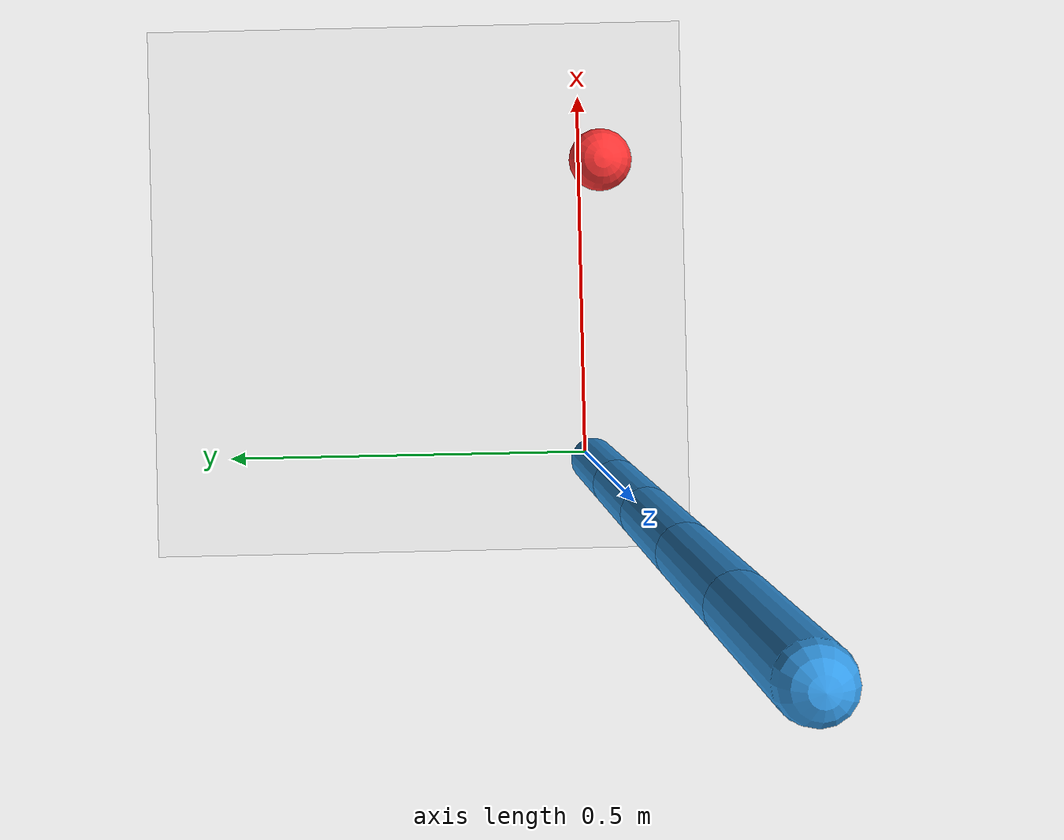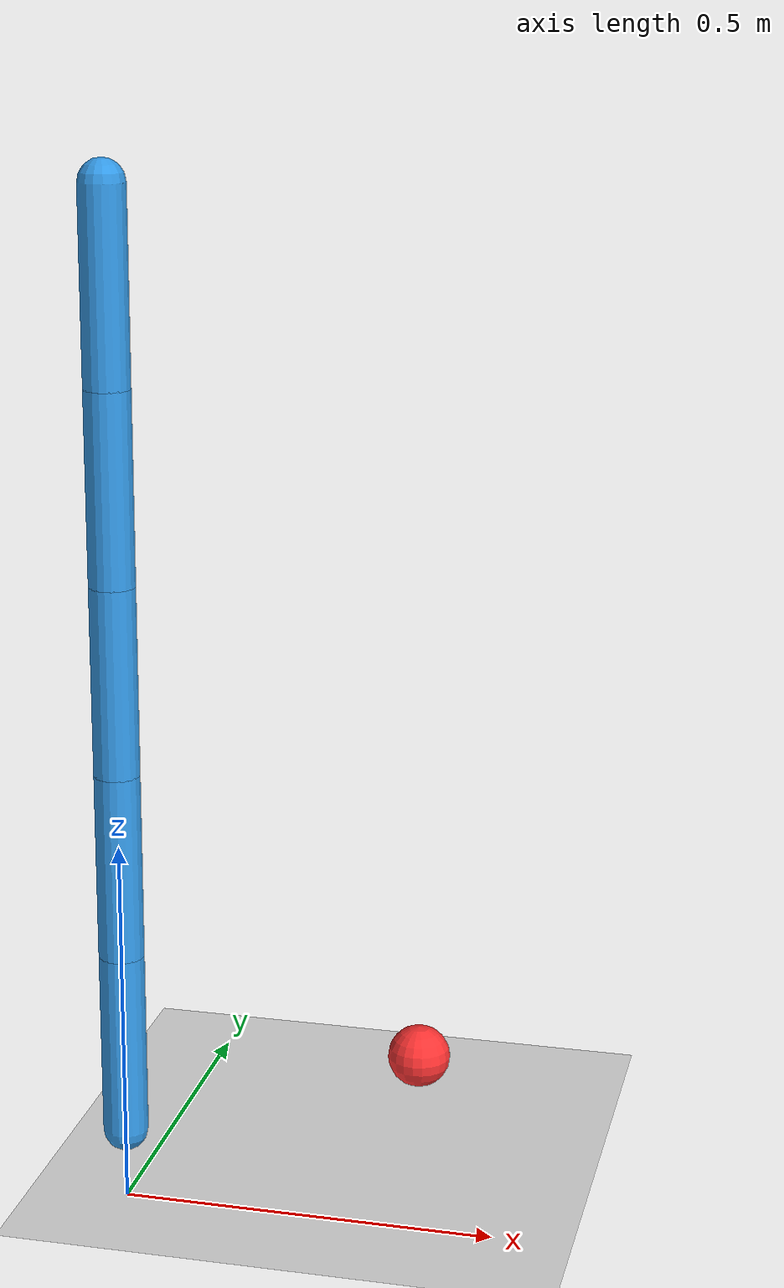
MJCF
<mujoco model="stage3_chain_with_ball">

    <!--  GLOBAL OPTIONS       -->
    <option timestep="0.002" gravity="0 0 -9.81" integrator="RK4"/>

    <!--  VISUAL               -->
    <visual>
        <global offwidth="800" offheight="600"/>
    </visual>

    <!--  DEFAULTS             -->
    <default>
        <joint
            type="hinge"
            axis="0 1 0"
            damping="0.2"
            limited="true"
            range="-60 60"/>

        <geom
            type="capsule"
            size="0.03"
            density="1000"
            friction="1 0.1 0.1"
            rgba="0.2 0.6 0.9 1"/>

        <motor
            ctrllimited="true"
            ctrlrange="-1 1"/>
    </default>

    <!--  WORLD BODY           -->
    <worldbody>

        <!-- Ground -->
        <geom type="plane" size="5 5 0.1" rgba="0.9 0.9 0.9 1"/>

        <!-- TARGET BALL (FIXED) -->
        <body name="target" pos="0.4 0 0.25">
            <geom
                name="target_ball"
                type="sphere"
                size="0.04"
                rgba="1 0.2 0.2 1"
                contype="0"
                conaffinity="0"/>
        </body>

        <!-- ROBOT BASE -->
        <body name="base" pos="0 0 0.1">

            <!-- Link 1 -->
            <body name="link1" pos="0 0 0">
                <joint name="j1"/>
                <geom fromto="0 0 0  0 0 0.25"/>

                <!-- Link 2 -->
                <body name="link2" pos="0 0 0.25">
                    <joint name="j2"/>
                    <geom fromto="0 0 0  0 0 0.25"/>

                    <!-- Link 3 -->
                    <body name="link3" pos="0 0 0.25">
                        <joint name="j3"/>
                        <geom fromto="0 0 0  0 0 0.25"/>

                        <!-- Link 4 -->
                        <body name="link4" pos="0 0 0.25">
                            <joint name="j4"/>
                            <geom fromto="0 0 0  0 0 0.25"/>

                            <!-- Link 5 -->
                            <body name="link5" pos="0 0 0.25">
                                <joint name="j5"/>
                                <geom fromto="0 0 0  0 0 0.25"/>

                                <!-- TIP SITE -->
                                <site
                                    name="tip"
                                    pos="0 0 0.25"
                                    size="0.02"
                                    rgba="0 1 0 1"/>
                            </body>

                        </body>
                    </body>
                </body>
            </body>
        </body>
    </worldbody>

    <!--  ACTUATORS            -->
    <actuator>
        <motor name="m1" joint="j1" gear="1"/>
        <motor name="m2" joint="j2" gear="1"/>
        <motor name="m3" joint="j3" gear="1"/>
        <motor name="m4" joint="j4" gear="1"/>
        <motor name="m5" joint="j5" gear="1"/>
    </actuator>

</mujoco>
